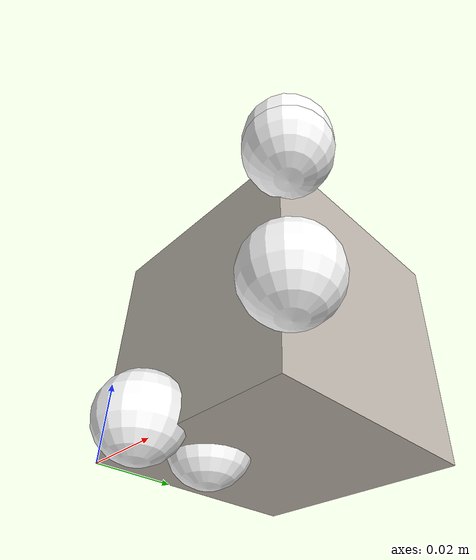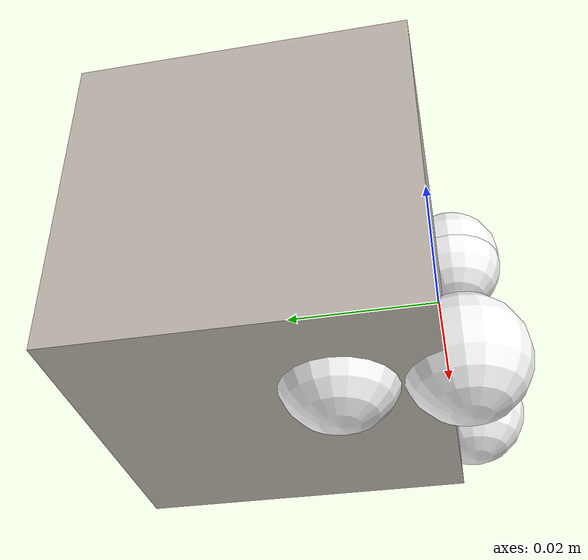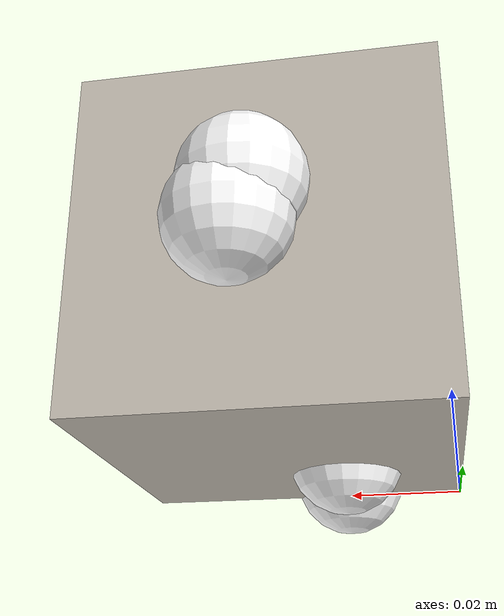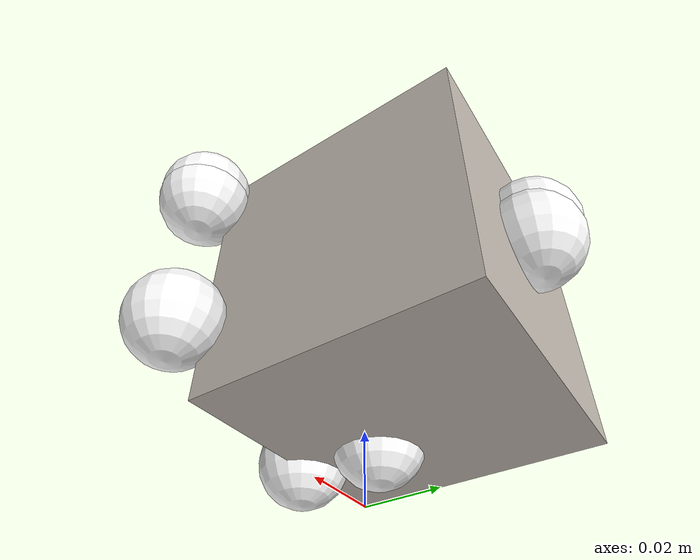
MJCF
<mujoco model="rubik-v1.50">
	<asset>
		<texture name='rubik' file="rubik/rubik.png" gridsize="3 4" gridlayout=".U..LFRB.D.."/>
		<material name="MatRubik" texture="rubik" specular="1" shininess=".3" reflectance="0"/>
	</asset>

	<worldbody>
		<body name="middle" pos=".0285 .0285 .0285">
			<geom name="middle" type="box" size=".0285 .0285 .0285" material="MatRubik" condim="4"/>
			<site name="center" pos="0 0 0" rgba="1 0 0 1" size="0.01 0.01 0.01"></site>
			<joint name="cube_tx" type="slide" axis="1 0 0" limited="false"/>
			<joint name="cube_ty" type="slide" axis="0 1 0" limited="false"/>
			<joint name="cube_tz" type="slide" axis="0 0 1" limited="false"/>
			<joint name="cube_rot" type="ball" limited="false"/>
			<geom  type="sphere" name="obstacle0" size="0.01" pos="-0.00895167 -0.01227946 -0.02498058" rgba="1 1 1 1" condim="4"/>
			<geom  type="sphere" name="obstacle1" size="0.01" pos=" 0.03338414 -0.03118412  0.02498058" rgba="1 1 1 1" condim="4"/>
			<geom  type="sphere" name="obstacle2" size="0.01" pos=" 0.03338414 -0.03118412 -0.01206404" rgba="1 1 1 1" condim="4"/>
			<geom  type="sphere" name="obstacle3" size="0.01" pos=" 0.03338414 -0.03118412  0.02254924" rgba="1 1 1 1" condim="4"/>
			<geom  type="sphere" name="obstacle4" size="0.01" pos=" 0.00119643  0.03118412  0.00537345" rgba="1 1 1 1" condim="4"/>
			<geom  type="sphere" name="obstacle5" size="0.01" pos=" 0.0032461   0.03118412 -0.00059712" rgba="1 1 1 1" condim="4"/>
			<geom  type="sphere" name="obstacle6" size="0.01" pos="-0.0080452  -0.03118412 -0.02498058" rgba="1 1 1 1" condim="4"/>
		</body>

		<body name="annotation:outer_bound" pos="0.0285 0.0285 0.0285">
			<geom conaffinity="0" contype="0" mass="0" pos="0 0 0" rgba="0.417022 0.720324 0.000114 0.1" size="0.0285 0.0285 0.0285" type="box"></geom>
		</body>
	</worldbody>

</mujoco>
